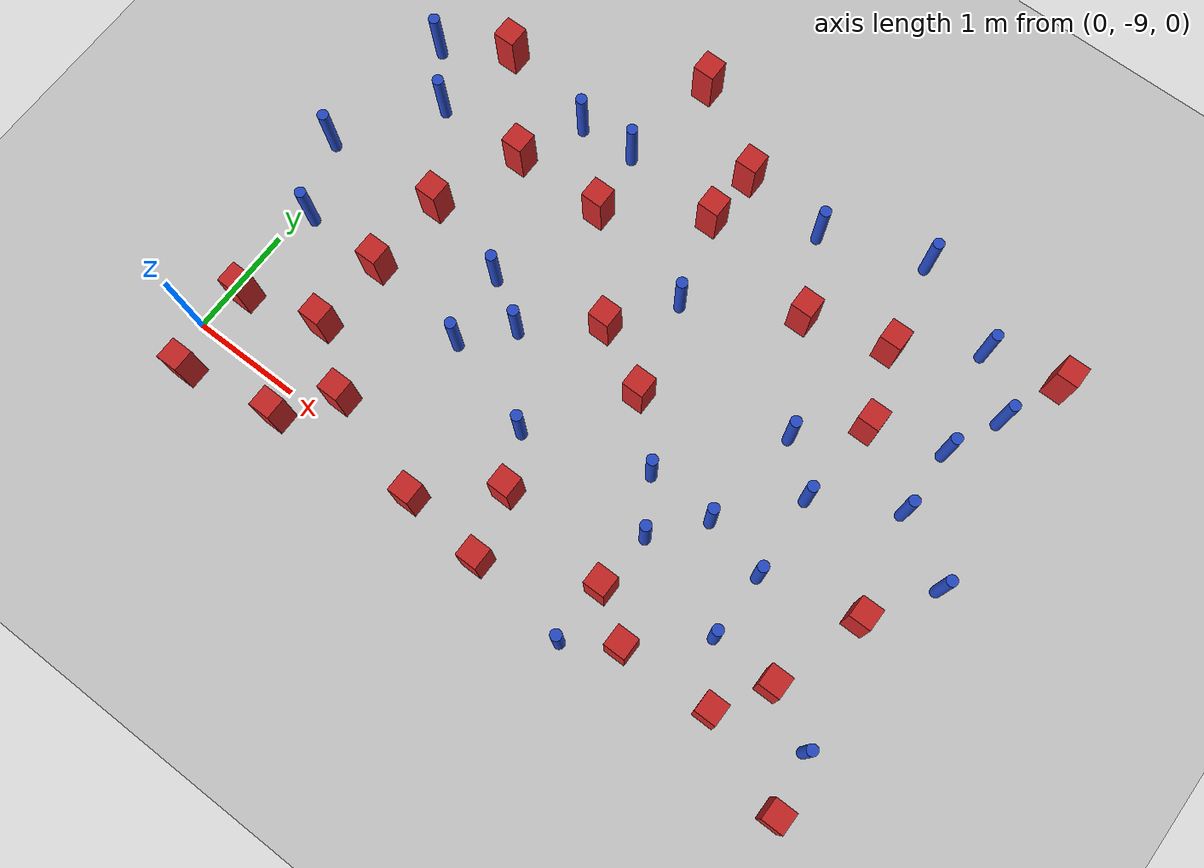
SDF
<sdf version="1.6">
 <world name="default">
  <model name="ground_plane">
   <static>1</static>
   <link name="link">
    <collision name="collision">
     <geometry><plane><normal>0 0 1</normal><size>100 100</size></plane></geometry>
     <surface><friction><ode><mu>100</mu><mu2>50</mu2></ode></friction></surface>
    </collision>
    <visual name="visual">
     <cast_shadows>0</cast_shadows>
     <geometry><plane><normal>0 0 1</normal><size>100 100</size></plane></geometry>
     <material>
      <ambient>1.0 1.0 1.0 1.0</ambient>
      <diffuse>0.8 0.8 0.8 1.0</diffuse>
      <specular>0.01 0.01 0.01 1.000000</specular>
     </material>
    </visual>
   </link>
  </model>
  <model name="pole_obstacle3">
   <static>true</static>
   <pose>0.141307437427 -7.68088082343 7.38925637345e-09 -8.471706928e-08 1.24976765036e-08 -1.74513093019e-07</pose>
   <link name="link">
    <pose>0 0 0.3 0 -0 0</pose>
    <inertial>
     <mass>1</mass>
     <inertia><ixx>0.145833</ixx><ixy>0</ixy><ixz>0</ixz><iyy>0.145833</iyy><iyz>0</iyz><izz>0.125</izz></inertia>
    </inertial>
    <collision name="collision">
     <geometry><cylinder><radius>0.05</radius><length>.6</length></cylinder></geometry>
    </collision>
    <visual name="visual">
     <geometry><cylinder><radius>0.05</radius><length>.6</length></cylinder></geometry>
     <material>
      <script><name>Gazebo/Blue</name><uri>file://media/materials/scripts/gazebo.material</uri></script>
     </material>
    </visual>
   </link>
  </model>
  <model name="square_post_obstacle4">
   <static>true</static>
   <pose>1.247294603 -6.15242603051 1.91545236811e-07 -7.35059704564e-06 1.12565212e-07 2.39332434364e-05</pose>
   <link name="link">
    <pose>0 0 0.25 0 -0 0</pose>
    <inertial>
     <mass>100</mass>
     <inertia>
      <ixx>0.166667</ixx>
      <ixy>0</ixy>
      <ixz>0</ixz>
      <iyy>0.166667</iyy>
      <iyz>0</iyz>
      <izz>0.166667</izz>
     </inertia>
    </inertial>
    <collision name="collision"><geometry><box><size>.2 .2 .5</size></box></geometry></collision>
    <visual name="visual">
     <geometry><box><size>.2 .2 .5</size></box></geometry>
     <material>
      <script><name>Gazebo/Red</name><uri>file://media/materials/scripts/gazebo.material</uri></script>
     </material>
    </visual>
   </link>
  </model>
  <model name="square_post_obstacle5">
   <static>true</static>
   <pose>0.161578494931 -8.57052492048 1.91545236811e-07 -7.35059704564e-06 1.12565212e-07 2.39332434364e-05</pose>
   <link name="link">
    <pose>0 0 0.25 0 -0 0</pose>
    <inertial>
     <mass>100</mass>
     <inertia>
      <ixx>0.166667</ixx>
      <ixy>0</ixy>
      <ixz>0</ixz>
      <iyy>0.166667</iyy>
      <iyz>0</iyz>
      <izz>0.166667</izz>
     </inertia>
    </inertial>
    <collision name="collision"><geometry><box><size>.2 .2 .5</size></box></geometry></collision>
    <visual name="visual">
     <geometry><box><size>.2 .2 .5</size></box></geometry>
     <material>
      <script><name>Gazebo/Red</name><uri>file://media/materials/scripts/gazebo.material</uri></script>
     </material>
    </visual>
   </link>
  </model>
  <model name="square_post_obstacle8">
   <static>true</static>
   <pose>5.90578186092 -7.71212455294 1.91545236811e-07 -7.35059704564e-06 1.12565212e-07 2.39332434364e-05</pose>
   <link name="link">
    <pose>0 0 0.25 0 -0 0</pose>
    <inertial>
     <mass>100</mass>
     <inertia>
      <ixx>0.166667</ixx>
      <ixy>0</ixy>
      <ixz>0</ixz>
      <iyy>0.166667</iyy>
      <iyz>0</iyz>
      <izz>0.166667</izz>
     </inertia>
    </inertial>
    <collision name="collision"><geometry><box><size>.2 .2 .5</size></box></geometry></collision>
    <visual name="visual">
     <geometry><box><size>.2 .2 .5</size></box></geometry>
     <material>
      <script><name>Gazebo/Red</name><uri>file://media/materials/scripts/gazebo.material</uri></script>
     </material>
    </visual>
   </link>
  </model>
  <model name="square_post_obstacle14">
   <static>true</static>
   <pose>1.41845635646 -8.77849370848 1.91545236811e-07 -7.35059704564e-06 1.12565212e-07 2.39332434364e-05</pose>
   <link name="link">
    <pose>0 0 0.25 0 -0 0</pose>
    <inertial>
     <mass>100</mass>
     <inertia>
      <ixx>0.166667</ixx>
      <ixy>0</ixy>
      <ixz>0</ixz>
      <iyy>0.166667</iyy>
      <iyz>0</iyz>
      <izz>0.166667</izz>
     </inertia>
    </inertial>
    <collision name="collision"><geometry><box><size>.2 .2 .5</size></box></geometry></collision>
    <visual name="visual">
     <geometry><box><size>.2 .2 .5</size></box></geometry>
     <material>
      <script><name>Gazebo/Red</name><uri>file://media/materials/scripts/gazebo.material</uri></script>
     </material>
    </visual>
   </link>
  </model>
  <model name="square_post_obstacle19">
   <static>true</static>
   <pose>4.82646554091 -5.68072084667 1.91545236811e-07 -7.35059704564e-06 1.12565212e-07 2.39332434364e-05</pose>
   <link name="link">
    <pose>0 0 0.25 0 -0 0</pose>
    <inertial>
     <mass>100</mass>
     <inertia>
      <ixx>0.166667</ixx>
      <ixy>0</ixy>
      <ixz>0</ixz>
      <iyy>0.166667</iyy>
      <iyz>0</iyz>
      <izz>0.166667</izz>
     </inertia>
    </inertial>
    <collision name="collision"><geometry><box><size>.2 .2 .5</size></box></geometry></collision>
    <visual name="visual">
     <geometry><box><size>.2 .2 .5</size></box></geometry>
     <material>
      <script><name>Gazebo/Red</name><uri>file://media/materials/scripts/gazebo.material</uri></script>
     </material>
    </visual>
   </link>
  </model>
  <model name="square_post_obstacle20">
   <static>true</static>
   <pose>1.0768508336 -9.2199925486 1.91545236811e-07 -7.35059704564e-06 1.12565212e-07 2.39332434364e-05</pose>
   <link name="link">
    <pose>0 0 0.25 0 -0 0</pose>
    <inertial>
     <mass>100</mass>
     <inertia>
      <ixx>0.166667</ixx>
      <ixy>0</ixy>
      <ixz>0</ixz>
      <iyy>0.166667</iyy>
      <iyz>0</iyz>
      <izz>0.166667</izz>
     </inertia>
    </inertial>
    <collision name="collision"><geometry><box><size>.2 .2 .5</size></box></geometry></collision>
    <visual name="visual">
     <geometry><box><size>.2 .2 .5</size></box></geometry>
     <material>
      <script><name>Gazebo/Red</name><uri>file://media/materials/scripts/gazebo.material</uri></script>
     </material>
    </visual>
   </link>
  </model>
  <model name="pole_obstacle24">
   <static>true</static>
   <pose>6.28574504298 -7.13417489419 7.38925637345e-09 -8.47170692796e-08 1.24976764786e-08 -1.74513093032e-07</pose>
   <link name="link">
    <pose>0 0 0.3 0 -0 0</pose>
    <inertial>
     <mass>1</mass>
     <inertia><ixx>0.145833</ixx><ixy>0</ixy><ixz>0</ixz><iyy>0.145833</iyy><iyz>0</iyz><izz>0.125</izz></inertia>
    </inertial>
    <collision name="collision">
     <geometry><cylinder><radius>0.05</radius><length>.6</length></cylinder></geometry>
    </collision>
    <visual name="visual">
     <geometry><cylinder><radius>0.05</radius><length>.6</length></cylinder></geometry>
     <material>
      <script><name>Gazebo/Blue</name><uri>file://media/materials/scripts/gazebo.material</uri></script>
     </material>
    </visual>
   </link>
  </model>
  <model name="square_post_obstacle32">
   <static>true</static>
   <pose>4.52101651909 -9.02843025565 1.91545236811e-07 -7.35059704564e-06 1.12565212e-07 2.39332434364e-05</pose>
   <link name="link">
    <pose>0 0 0.25 0 -0 0</pose>
    <inertial>
     <mass>100</mass>
     <inertia>
      <ixx>0.166667</ixx>
      <ixy>0</ixy>
      <ixz>0</ixz>
      <iyy>0.166667</iyy>
      <iyz>0</iyz>
      <izz>0.166667</izz>
     </inertia>
    </inertial>
    <collision name="collision"><geometry><box><size>.2 .2 .5</size></box></geometry></collision>
    <visual name="visual">
     <geometry><box><size>.2 .2 .5</size></box></geometry>
     <material>
      <script><name>Gazebo/Red</name><uri>file://media/materials/scripts/gazebo.material</uri></script>
     </material>
    </visual>
   </link>
  </model>
  <model name="pole_obstacle37">
   <static>true</static>
   <pose>5.05941591067 -7.91602911837 7.38925637345e-09 -8.47170692796e-08 1.24976764786e-08 -1.74513093032e-07</pose>
   <link name="link">
    <pose>0 0 0.3 0 -0 0</pose>
    <inertial>
     <mass>1</mass>
     <inertia><ixx>0.145833</ixx><ixy>0</ixy><ixz>0</ixz><iyy>0.145833</iyy><iyz>0</iyz><izz>0.125</izz></inertia>
    </inertial>
    <collision name="collision">
     <geometry><cylinder><radius>0.05</radius><length>.6</length></cylinder></geometry>
    </collision>
    <visual name="visual">
     <geometry><cylinder><radius>0.05</radius><length>.6</length></cylinder></geometry>
     <material>
      <script><name>Gazebo/Blue</name><uri>file://media/materials/scripts/gazebo.material</uri></script>
     </material>
    </visual>
   </link>
  </model>
  <model name="pole_obstacle38">
   <static>true</static>
   <pose>4.66620318073 -4.85279607327 7.38925637345e-09 -8.47170692796e-08 1.24976764786e-08 -1.74513093032e-07</pose>
   <link name="link">
    <pose>0 0 0.3 0 -0 0</pose>
    <inertial>
     <mass>1</mass>
     <inertia><ixx>0.145833</ixx><ixy>0</ixy><ixz>0</ixz><iyy>0.145833</iyy><iyz>0</iyz><izz>0.125</izz></inertia>
    </inertial>
    <collision name="collision">
     <geometry><cylinder><radius>0.05</radius><length>.6</length></cylinder></geometry>
    </collision>
    <visual name="visual">
     <geometry><cylinder><radius>0.05</radius><length>.6</length></cylinder></geometry>
     <material>
      <script><name>Gazebo/Blue</name><uri>file://media/materials/scripts/gazebo.material</uri></script>
     </material>
    </visual>
   </link>
  </model>
  <model name="square_post_obstacle38">
   <static>true</static>
   <pose>3.01587520829 -8.57592726186 1.91545236811e-07 -7.35059704564e-06 1.12565212e-07 2.39332434364e-05</pose>
   <link name="link">
    <pose>0 0 0.25 0 -0 0</pose>
    <inertial>
     <mass>100</mass>
     <inertia>
      <ixx>0.166667</ixx>
      <ixy>0</ixy>
      <ixz>0</ixz>
      <iyy>0.166667</iyy>
      <iyz>0</iyz>
      <izz>0.166667</izz>
     </inertia>
    </inertial>
    <collision name="collision"><geometry><box><size>.2 .2 .5</size></box></geometry></collision>
    <visual name="visual">
     <geometry><box><size>.2 .2 .5</size></box></geometry>
     <material>
      <script><name>Gazebo/Red</name><uri>file://media/materials/scripts/gazebo.material</uri></script>
     </material>
    </visual>
   </link>
  </model>
  <model name="pole_obstacle39">
   <static>true</static>
   <pose>5.48624549172 -5.23455754882 7.38925637345e-09 -8.47170692796e-08 1.24976764786e-08 -1.74513093032e-07</pose>
   <link name="link">
    <pose>0 0 0.3 0 -0 0</pose>
    <inertial>
     <mass>1</mass>
     <inertia><ixx>0.145833</ixx><ixy>0</ixy><ixz>0</ixz><iyy>0.145833</iyy><iyz>0</iyz><izz>0.125</izz></inertia>
    </inertial>
    <collision name="collision">
     <geometry><cylinder><radius>0.05</radius><length>.6</length></cylinder></geometry>
    </collision>
    <visual name="visual">
     <geometry><cylinder><radius>0.05</radius><length>.6</length></cylinder></geometry>
     <material>
      <script><name>Gazebo/Blue</name><uri>file://media/materials/scripts/gazebo.material</uri></script>
     </material>
    </visual>
   </link>
  </model>
  <model name="square_post_obstacle40">
   <static>true</static>
   <pose>2.79253574585 -6.95926911857 1.91545236811e-07 -7.35059704564e-06 1.12565212e-07 2.39332434364e-05</pose>
   <link name="link">
    <pose>0 0 0.25 0 -0 0</pose>
    <inertial>
     <mass>100</mass>
     <inertia>
      <ixx>0.166667</ixx>
      <ixy>0</ixy>
      <ixz>0</ixz>
      <iyy>0.166667</iyy>
      <iyz>0</iyz>
      <izz>0.166667</izz>
     </inertia>
    </inertial>
    <collision name="collision"><geometry><box><size>.2 .2 .5</size></box></geometry></collision>
    <visual name="visual">
     <geometry><box><size>.2 .2 .5</size></box></geometry>
     <material>
      <script><name>Gazebo/Red</name><uri>file://media/materials/scripts/gazebo.material</uri></script>
     </material>
    </visual>
   </link>
  </model>
  <model name="square_post_obstacle47">
   <static>true</static>
   <pose>0.874681205363 -8.3783853455 1.91545236811e-07 -7.35059704564e-06 1.12565212e-07 2.39332434364e-05</pose>
   <link name="link">
    <pose>0 0 0.25 0 -0 0</pose>
    <inertial>
     <mass>100</mass>
     <inertia>
      <ixx>0.166667</ixx>
      <ixy>0</ixy>
      <ixz>0</ixz>
      <iyy>0.166667</iyy>
      <iyz>0</iyz>
      <izz>0.166667</izz>
     </inertia>
    </inertial>
    <collision name="collision"><geometry><box><size>.2 .2 .5</size></box></geometry></collision>
    <visual name="visual">
     <geometry><box><size>.2 .2 .5</size></box></geometry>
     <material>
      <script><name>Gazebo/Red</name><uri>file://media/materials/scripts/gazebo.material</uri></script>
     </material>
    </visual>
   </link>
  </model>
  <model name="pole_obstacle46">
   <static>true</static>
   <pose>1.7686049959 -7.164342052 7.38925637345e-09 -8.47170692799e-08 1.24976765033e-08 -1.74513093018e-07</pose>
   <link name="link">
    <pose>0 0 0.3 0 -0 0</pose>
    <inertial>
     <mass>1</mass>
     <inertia><ixx>0.145833</ixx><ixy>0</ixy><ixz>0</ixz><iyy>0.145833</iyy><iyz>0</iyz><izz>0.125</izz></inertia>
    </inertial>
    <collision name="collision">
     <geometry><cylinder><radius>0.05</radius><length>.6</length></cylinder></geometry>
    </collision>
    <visual name="visual">
     <geometry><cylinder><radius>0.05</radius><length>.6</length></cylinder></geometry>
     <material>
      <script><name>Gazebo/Blue</name><uri>file://media/materials/scripts/gazebo.material</uri></script>
     </material>
    </visual>
   </link>
  </model>
  <model name="pole_obstacle48">
   <static>true</static>
   <pose>5.91869057345 -5.65414367045 7.38925637345e-09 -8.47170692796e-08 1.24976764786e-08 -1.74513093032e-07</pose>
   <link name="link">
    <pose>0 0 0.3 0 -0 0</pose>
    <inertial>
     <mass>1</mass>
     <inertia><ixx>0.145833</ixx><ixy>0</ixy><ixz>0</ixz><iyy>0.145833</iyy><iyz>0</iyz><izz>0.125</izz></inertia>
    </inertial>
    <collision name="collision">
     <geometry><cylinder><radius>0.05</radius><length>.6</length></cylinder></geometry>
    </collision>
    <visual name="visual">
     <geometry><cylinder><radius>0.05</radius><length>.6</length></cylinder></geometry>
     <material>
      <script><name>Gazebo/Blue</name><uri>file://media/materials/scripts/gazebo.material</uri></script>
     </material>
    </visual>
   </link>
  </model>
  <model name="square_post_obstacle52">
   <static>true</static>
   <pose>2.96372649649 -5.10758367308 1.91545236811e-07 -7.35059704564e-06 1.12565212e-07 2.39332434364e-05</pose>
   <link name="link">
    <pose>0 0 0.25 0 -0 0</pose>
    <inertial>
     <mass>100</mass>
     <inertia>
      <ixx>0.166667</ixx>
      <ixy>0</ixy>
      <ixz>0</ixz>
      <iyy>0.166667</iyy>
      <iyz>0</iyz>
      <izz>0.166667</izz>
     </inertia>
    </inertial>
    <collision name="collision"><geometry><box><size>.2 .2 .5</size></box></geometry></collision>
    <visual name="visual">
     <geometry><box><size>.2 .2 .5</size></box></geometry>
     <material>
      <script><name>Gazebo/Red</name><uri>file://media/materials/scripts/gazebo.material</uri></script>
     </material>
    </visual>
   </link>
  </model>
  <model name="square_post_obstacle63">
   <static>true</static>
   <pose>2.15338307017 -4.60433572408 1.91545236811e-07 -7.35059704564e-06 1.12565212e-07 2.39332434364e-05</pose>
   <link name="link">
    <pose>0 0 0.25 0 -0 0</pose>
    <inertial>
     <mass>100</mass>
     <inertia>
      <ixx>0.166667</ixx>
      <ixy>0</ixy>
      <ixz>0</ixz>
      <iyy>0.166667</iyy>
      <iyz>0</iyz>
      <izz>0.166667</izz>
     </inertia>
    </inertial>
    <collision name="collision"><geometry><box><size>.2 .2 .5</size></box></geometry></collision>
    <visual name="visual">
     <geometry><box><size>.2 .2 .5</size></box></geometry>
     <material>
      <script><name>Gazebo/Red</name><uri>file://media/materials/scripts/gazebo.material</uri></script>
     </material>
    </visual>
   </link>
  </model>
  <model name="square_post_obstacle75">
   <static>true</static>
   <pose>2.10214812445 -6.14550689388 1.91545236811e-07 -7.35059704564e-06 1.12565212e-07 2.39332434364e-05</pose>
   <link name="link">
    <pose>0 0 0.25 0 -0 0</pose>
    <inertial>
     <mass>100</mass>
     <inertia>
      <ixx>0.166667</ixx>
      <ixy>0</ixy>
      <ixz>0</ixz>
      <iyy>0.166667</iyy>
      <iyz>0</iyz>
      <izz>0.166667</izz>
     </inertia>
    </inertial>
    <collision name="collision"><geometry><box><size>.2 .2 .5</size></box></geometry></collision>
    <visual name="visual">
     <geometry><box><size>.2 .2 .5</size></box></geometry>
     <material>
      <script><name>Gazebo/Red</name><uri>file://media/materials/scripts/gazebo.material</uri></script>
     </material>
    </visual>
   </link>
  </model>
  <model name="square_post_obstacle76">
   <static>true</static>
   <pose>3.37809625496 -7.26938653703 1.91545236811e-07 -7.35059704564e-06 1.12565212e-07 2.39332434364e-05</pose>
   <link name="link">
    <pose>0 0 0.25 0 -0 0</pose>
    <inertial>
     <mass>100</mass>
     <inertia>
      <ixx>0.166667</ixx>
      <ixy>0</ixy>
      <ixz>0</ixz>
      <iyy>0.166667</iyy>
      <iyz>0</iyz>
      <izz>0.166667</izz>
     </inertia>
    </inertial>
    <collision name="collision"><geometry><box><size>.2 .2 .5</size></box></geometry></collision>
    <visual name="visual">
     <geometry><box><size>.2 .2 .5</size></box></geometry>
     <material>
      <script><name>Gazebo/Red</name><uri>file://media/materials/scripts/gazebo.material</uri></script>
     </material>
    </visual>
   </link>
  </model>
  <model name="pole_obstacle75">
   <static>true</static>
   <pose>-0.175077576671 -7.01942484182 7.38925637345e-09 -8.47170692799e-08 1.24976765068e-08 -1.74513093018e-07</pose>
   <link name="link">
    <pose>0 0 0.3 0 -0 0</pose>
    <inertial>
     <mass>1</mass>
     <inertia><ixx>0.145833</ixx><ixy>0</ixy><ixz>0</ixz><iyy>0.145833</iyy><iyz>0</iyz><izz>0.125</izz></inertia>
    </inertial>
    <collision name="collision">
     <geometry><cylinder><radius>0.05</radius><length>.6</length></cylinder></geometry>
    </collision>
    <visual name="visual">
     <geometry><cylinder><radius>0.05</radius><length>.6</length></cylinder></geometry>
     <material>
      <script><name>Gazebo/Blue</name><uri>file://media/materials/scripts/gazebo.material</uri></script>
     </material>
    </visual>
   </link>
  </model>
  <model name="pole_obstacle85">
   <static>true</static>
   <pose>0.398781622146 -6.17395219763 7.38925637345e-09 -8.471706928e-08 1.24976765079e-08 -1.74513093015e-07</pose>
   <link name="link">
    <pose>0 0 0.3 0 -0 0</pose>
    <inertial>
     <mass>1</mass>
     <inertia><ixx>0.145833</ixx><ixy>0</ixy><ixz>0</ixz><iyy>0.145833</iyy><iyz>0</iyz><izz>0.125</izz></inertia>
    </inertial>
    <collision name="collision">
     <geometry><cylinder><radius>0.05</radius><length>.6</length></cylinder></geometry>
    </collision>
    <visual name="visual">
     <geometry><cylinder><radius>0.05</radius><length>.6</length></cylinder></geometry>
     <material>
      <script><name>Gazebo/Blue</name><uri>file://media/materials/scripts/gazebo.material</uri></script>
     </material>
    </visual>
   </link>
  </model>
  <model name="square_post_obstacle83">
   <static>true</static>
   <pose>2.41957839297 -9.09022849704 1.91545236811e-07 -7.35059704564e-06 1.12565212e-07 2.39332434364e-05</pose>
   <link name="link">
    <pose>0 0 0.25 0 -0 0</pose>
    <inertial>
     <mass>100</mass>
     <inertia>
      <ixx>0.166667</ixx>
      <ixy>0</ixy>
      <ixz>0</ixz>
      <iyy>0.166667</iyy>
      <iyz>0</iyz>
      <izz>0.166667</izz>
     </inertia>
    </inertial>
    <collision name="collision"><geometry><box><size>.2 .2 .5</size></box></geometry></collision>
    <visual name="visual">
     <geometry><box><size>.2 .2 .5</size></box></geometry>
     <material>
      <script><name>Gazebo/Red</name><uri>file://media/materials/scripts/gazebo.material</uri></script>
     </material>
    </visual>
   </link>
  </model>
  <model name="pole_obstacle101">
   <static>true</static>
   <pose>3.17291739853 -6.40830455927 7.38925637345e-09 -8.47170692798e-08 1.24976765033e-08 -1.74513093019e-07</pose>
   <link name="link">
    <pose>0 0 0.3 0 -0 0</pose>
    <inertial>
     <mass>1</mass>
     <inertia><ixx>0.145833</ixx><ixy>0</ixy><ixz>0</ixz><iyy>0.145833</iyy><iyz>0</iyz><izz>0.125</izz></inertia>
    </inertial>
    <collision name="collision">
     <geometry><cylinder><radius>0.05</radius><length>.6</length></cylinder></geometry>
    </collision>
    <visual name="visual">
     <geometry><cylinder><radius>0.05</radius><length>.6</length></cylinder></geometry>
     <material>
      <script><name>Gazebo/Blue</name><uri>file://media/materials/scripts/gazebo.material</uri></script>
     </material>
    </visual>
   </link>
  </model>
  <model name="square_post_obstacle99">
   <static>true</static>
   <pose>0.211255953364 -9.36707420106 1.91545236811e-07 -7.35059704564e-06 1.12565212e-07 2.39332434364e-05</pose>
   <link name="link">
    <pose>0 0 0.25 0 -0 0</pose>
    <inertial>
     <mass>100</mass>
     <inertia>
      <ixx>0.166667</ixx>
      <ixy>0</ixy>
      <ixz>0</ixz>
      <iyy>0.166667</iyy>
      <iyz>0</iyz>
      <izz>0.166667</izz>
     </inertia>
    </inertial>
    <collision name="collision"><geometry><box><size>.2 .2 .5</size></box></geometry></collision>
    <visual name="visual">
     <geometry><box><size>.2 .2 .5</size></box></geometry>
     <material>
      <script><name>Gazebo/Red</name><uri>file://media/materials/scripts/gazebo.material</uri></script>
     </material>
    </visual>
   </link>
  </model>
  <model name="pole_obstacle113">
   <static>true</static>
   <pose>4.48523671766 -7.77732234313 7.38925637345e-09 -8.47170692796e-08 1.24976764786e-08 -1.74513093032e-07</pose>
   <link name="link">
    <pose>0 0 0.3 0 -0 0</pose>
    <inertial>
     <mass>1</mass>
     <inertia><ixx>0.145833</ixx><ixy>0</ixy><ixz>0</ixz><iyy>0.145833</iyy><iyz>0</iyz><izz>0.125</izz></inertia>
    </inertial>
    <collision name="collision">
     <geometry><cylinder><radius>0.05</radius><length>.6</length></cylinder></geometry>
    </collision>
    <visual name="visual">
     <geometry><cylinder><radius>0.05</radius><length>.6</length></cylinder></geometry>
     <material>
      <script><name>Gazebo/Blue</name><uri>file://media/materials/scripts/gazebo.material</uri></script>
     </material>
    </visual>
   </link>
  </model>
  <model name="square_post_obstacle108">
   <static>true</static>
   <pose>0.940062333671 -6.94157876831 1.91545236811e-07 -7.35059704564e-06 1.12565212e-07 2.39332434364e-05</pose>
   <link name="link">
    <pose>0 0 0.25 0 -0 0</pose>
    <inertial>
     <mass>100</mass>
     <inertia>
      <ixx>0.166667</ixx>
      <ixy>0</ixy>
      <ixz>0</ixz>
      <iyy>0.166667</iyy>
      <iyz>0</iyz>
      <izz>0.166667</izz>
     </inertia>
    </inertial>
    <collision name="collision"><geometry><box><size>.2 .2 .5</size></box></geometry></collision>
    <visual name="visual">
     <geometry><box><size>.2 .2 .5</size></box></geometry>
     <material>
      <script><name>Gazebo/Red</name><uri>file://media/materials/scripts/gazebo.material</uri></script>
     </material>
    </visual>
   </link>
  </model>
  <model name="square_post_obstacle111">
   <static>true</static>
   <pose>3.17364835283 -9.17054178301 1.91545236811e-07 -7.35059704564e-06 1.12565212e-07 2.39332434364e-05</pose>
   <link name="link">
    <pose>0 0 0.25 0 -0 0</pose>
    <inertial>
     <mass>100</mass>
     <inertia>
      <ixx>0.166667</ixx>
      <ixy>0</ixy>
      <ixz>0</ixz>
      <iyy>0.166667</iyy>
      <iyz>0</iyz>
      <izz>0.166667</izz>
     </inertia>
    </inertial>
    <collision name="collision"><geometry><box><size>.2 .2 .5</size></box></geometry></collision>
    <visual name="visual">
     <geometry><box><size>.2 .2 .5</size></box></geometry>
     <material>
      <script><name>Gazebo/Red</name><uri>file://media/materials/scripts/gazebo.material</uri></script>
     </material>
    </visual>
   </link>
  </model>
  <model name="square_post_obstacle121">
   <static>true</static>
   <pose>5.06488862234 -6.3556465604 1.91545236811e-07 -7.35059704564e-06 1.12565212e-07 2.39332434364e-05</pose>
   <link name="link">
    <pose>0 0 0.25 0 -0 0</pose>
    <inertial>
     <mass>100</mass>
     <inertia>
      <ixx>0.166667</ixx>
      <ixy>0</ixy>
      <ixz>0</ixz>
      <iyy>0.166667</iyy>
      <iyz>0</iyz>
      <izz>0.166667</izz>
     </inertia>
    </inertial>
    <collision name="collision"><geometry><box><size>.2 .2 .5</size></box></geometry></collision>
    <visual name="visual">
     <geometry><box><size>.2 .2 .5</size></box></geometry>
     <material>
      <script><name>Gazebo/Red</name><uri>file://media/materials/scripts/gazebo.material</uri></script>
     </material>
    </visual>
   </link>
  </model>
  <model name="square_post_obstacle122">
   <static>true</static>
   <pose>0.560977104921 -5.38965633295 1.91545236811e-07 -7.35059704564e-06 1.12565212e-07 2.39332434364e-05</pose>
   <link name="link">
    <pose>0 0 0.25 0 -0 0</pose>
    <inertial>
     <mass>100</mass>
     <inertia>
      <ixx>0.166667</ixx>
      <ixy>0</ixy>
      <ixz>0</ixz>
      <iyy>0.166667</iyy>
      <iyz>0</iyz>
      <izz>0.166667</izz>
     </inertia>
    </inertial>
    <collision name="collision"><geometry><box><size>.2 .2 .5</size></box></geometry></collision>
    <visual name="visual">
     <geometry><box><size>.2 .2 .5</size></box></geometry>
     <material>
      <script><name>Gazebo/Red</name><uri>file://media/materials/scripts/gazebo.material</uri></script>
     </material>
    </visual>
   </link>
  </model>
  <model name="square_post_obstacle125">
   <static>true</static>
   <pose>4.08440343266 -5.88838927059 1.91545236811e-07 -7.35059704564e-06 1.12565212e-07 2.39332434364e-05</pose>
   <link name="link">
    <pose>0 0 0.25 0 -0 0</pose>
    <inertial>
     <mass>100</mass>
     <inertia>
      <ixx>0.166667</ixx>
      <ixy>0</ixy>
      <ixz>0</ixz>
      <iyy>0.166667</iyy>
      <iyz>0</iyz>
      <izz>0.166667</izz>
     </inertia>
    </inertial>
    <collision name="collision"><geometry><box><size>.2 .2 .5</size></box></geometry></collision>
    <visual name="visual">
     <geometry><box><size>.2 .2 .5</size></box></geometry>
     <material>
      <script><name>Gazebo/Red</name><uri>file://media/materials/scripts/gazebo.material</uri></script>
     </material>
    </visual>
   </link>
  </model>
  <model name="pole_obstacle140">
   <static>true</static>
   <pose>1.4941129854 -5.5767857747 7.38925637345e-09 -8.47170692799e-08 1.24976765033e-08 -1.74513093018e-07</pose>
   <link name="link">
    <pose>0 0 0.3 0 -0 0</pose>
    <inertial>
     <mass>1</mass>
     <inertia><ixx>0.145833</ixx><ixy>0</ixy><ixz>0</ixz><iyy>0.145833</iyy><iyz>0</iyz><izz>0.125</izz></inertia>
    </inertial>
    <collision name="collision">
     <geometry><cylinder><radius>0.05</radius><length>.6</length></cylinder></geometry>
    </collision>
    <visual name="visual">
     <geometry><cylinder><radius>0.05</radius><length>.6</length></cylinder></geometry>
     <material>
      <script><name>Gazebo/Blue</name><uri>file://media/materials/scripts/gazebo.material</uri></script>
     </material>
    </visual>
   </link>
  </model>
  <model name="pole_obstacle141">
   <static>true</static>
   <pose>5.00628651835 -7.16376802225 7.38925637345e-09 -8.47170692796e-08 1.24976764786e-08 -1.74513093032e-07</pose>
   <link name="link">
    <pose>0 0 0.3 0 -0 0</pose>
    <inertial>
     <mass>1</mass>
     <inertia><ixx>0.145833</ixx><ixy>0</ixy><ixz>0</ixz><iyy>0.145833</iyy><iyz>0</iyz><izz>0.125</izz></inertia>
    </inertial>
    <collision name="collision">
     <geometry><cylinder><radius>0.05</radius><length>.6</length></cylinder></geometry>
    </collision>
    <visual name="visual">
     <geometry><cylinder><radius>0.05</radius><length>.6</length></cylinder></geometry>
     <material>
      <script><name>Gazebo/Blue</name><uri>file://media/materials/scripts/gazebo.material</uri></script>
     </material>
    </visual>
   </link>
  </model>
  <model name="square_post_obstacle126">
   <static>true</static>
   <pose>0.905455721114 -7.68796364854 1.91545236811e-07 -7.35059704564e-06 1.12565212e-07 2.39332434364e-05</pose>
   <link name="link">
    <pose>0 0 0.25 0 -0 0</pose>
    <inertial>
     <mass>100</mass>
     <inertia>
      <ixx>0.166667</ixx>
      <ixy>0</ixy>
      <ixz>0</ixz>
      <iyy>0.166667</iyy>
      <iyz>0</iyz>
      <izz>0.166667</izz>
     </inertia>
    </inertial>
    <collision name="collision"><geometry><box><size>.2 .2 .5</size></box></geometry></collision>
    <visual name="visual">
     <geometry><box><size>.2 .2 .5</size></box></geometry>
     <material>
      <script><name>Gazebo/Red</name><uri>file://media/materials/scripts/gazebo.material</uri></script>
     </material>
    </visual>
   </link>
  </model>
  <model name="pole_obstacle143">
   <static>true</static>
   <pose>6.1460553851 -8.81904203596 7.38925637345e-09 -8.471706928e-08 1.24976765081e-08 -1.74513093015e-07</pose>
   <link name="link">
    <pose>0 0 0.3 0 -0 0</pose>
    <inertial>
     <mass>1</mass>
     <inertia><ixx>0.145833</ixx><ixy>0</ixy><ixz>0</ixz><iyy>0.145833</iyy><iyz>0</iyz><izz>0.125</izz></inertia>
    </inertial>
    <collision name="collision">
     <geometry><cylinder><radius>0.05</radius><length>.6</length></cylinder></geometry>
    </collision>
    <visual name="visual">
     <geometry><cylinder><radius>0.05</radius><length>.6</length></cylinder></geometry>
     <material>
      <script><name>Gazebo/Blue</name><uri>file://media/materials/scripts/gazebo.material</uri></script>
     </material>
    </visual>
   </link>
  </model>
  <model name="square_post_obstacle141">
   <static>true</static>
   <pose>5.37119598864 -9.00990027287 1.91545236811e-07 -7.35059704564e-06 1.12565212e-07 2.39332434364e-05</pose>
   <link name="link">
    <pose>0 0 0.25 0 -0 0</pose>
    <inertial>
     <mass>100</mass>
     <inertia>
      <ixx>0.166667</ixx>
      <ixy>0</ixy>
      <ixz>0</ixz>
      <iyy>0.166667</iyy>
      <iyz>0</iyz>
      <izz>0.166667</izz>
     </inertia>
    </inertial>
    <collision name="collision"><geometry><box><size>.2 .2 .5</size></box></geometry></collision>
    <visual name="visual">
     <geometry><box><size>.2 .2 .5</size></box></geometry>
     <material>
      <script><name>Gazebo/Red</name><uri>file://media/materials/scripts/gazebo.material</uri></script>
     </material>
    </visual>
   </link>
  </model>
  <model name="pole_obstacle152">
   <static>true</static>
   <pose>4.09808947353 -9.29589958845 7.38925637345e-09 -8.471706928e-08 1.24976765081e-08 -1.74513093015e-07</pose>
   <link name="link">
    <pose>0 0 0.3 0 -0 0</pose>
    <inertial>
     <mass>1</mass>
     <inertia><ixx>0.145833</ixx><ixy>0</ixy><ixz>0</ixz><iyy>0.145833</iyy><iyz>0</iyz><izz>0.125</izz></inertia>
    </inertial>
    <collision name="collision">
     <geometry><cylinder><radius>0.05</radius><length>.6</length></cylinder></geometry>
    </collision>
    <visual name="visual">
     <geometry><cylinder><radius>0.05</radius><length>.6</length></cylinder></geometry>
     <material>
      <script><name>Gazebo/Blue</name><uri>file://media/materials/scripts/gazebo.material</uri></script>
     </material>
    </visual>
   </link>
  </model>
  <model name="pole_obstacle153">
   <static>true</static>
   <pose>1.87054598997 -7.82394654165 7.38925637345e-09 -8.47170692799e-08 1.24976765033e-08 -1.74513093018e-07</pose>
   <link name="link">
    <pose>0 0 0.3 0 -0 0</pose>
    <inertial>
     <mass>1</mass>
     <inertia><ixx>0.145833</ixx><ixy>0</ixy><ixz>0</ixz><iyy>0.145833</iyy><iyz>0</iyz><izz>0.125</izz></inertia>
    </inertial>
    <collision name="collision">
     <geometry><cylinder><radius>0.05</radius><length>.6</length></cylinder></geometry>
    </collision>
    <visual name="visual">
     <geometry><cylinder><radius>0.05</radius><length>.6</length></cylinder></geometry>
     <material>
      <script><name>Gazebo/Blue</name><uri>file://media/materials/scripts/gazebo.material</uri></script>
     </material>
    </visual>
   </link>
  </model>
  <model name="square_post_obstacle150">
   <static>true</static>
   <pose>4.10524818177 -8.74398541489 1.91545236811e-07 -7.35059704564e-06 1.12565212e-07 2.39332434364e-05</pose>
   <link name="link">
    <pose>0 0 0.25 0 -0 0</pose>
    <inertial>
     <mass>100</mass>
     <inertia>
      <ixx>0.166667</ixx>
      <ixy>0</ixy>
      <ixz>0</ixz>
      <iyy>0.166667</iyy>
      <iyz>0</iyz>
      <izz>0.166667</izz>
     </inertia>
    </inertial>
    <collision name="collision"><geometry><box><size>.2 .2 .5</size></box></geometry></collision>
    <visual name="visual">
     <geometry><box><size>.2 .2 .5</size></box></geometry>
     <material>
      <script><name>Gazebo/Red</name><uri>file://media/materials/scripts/gazebo.material</uri></script>
     </material>
    </visual>
   </link>
  </model>
  <model name="pole_obstacle159">
   <static>true</static>
   <pose>5.70721134407 -6.78129491311 7.38925637345e-09 -8.47170692796e-08 1.24976764786e-08 -1.74513093032e-07</pose>
   <link name="link">
    <pose>0 0 0.3 0 -0 0</pose>
    <inertial>
     <mass>1</mass>
     <inertia><ixx>0.145833</ixx><ixy>0</ixy><ixz>0</ixz><iyy>0.145833</iyy><iyz>0</iyz><izz>0.125</izz></inertia>
    </inertial>
    <collision name="collision">
     <geometry><cylinder><radius>0.05</radius><length>.6</length></cylinder></geometry>
    </collision>
    <visual name="visual">
     <geometry><cylinder><radius>0.05</radius><length>.6</length></cylinder></geometry>
     <material>
      <script><name>Gazebo/Blue</name><uri>file://media/materials/scripts/gazebo.material</uri></script>
     </material>
    </visual>
   </link>
  </model>
  <model name="square_post_obstacle157">
   <static>true</static>
   <pose>6.15237240143 -5.08408017497 1.91545236811e-07 -7.35059704564e-06 1.12565212e-07 2.39332434364e-05</pose>
   <link name="link">
    <pose>0 0 0.25 0 -0 0</pose>
    <inertial>
     <mass>100</mass>
     <inertia>
      <ixx>0.166667</ixx>
      <ixy>0</ixy>
      <ixz>0</ixz>
      <iyy>0.166667</iyy>
      <iyz>0</iyz>
      <izz>0.166667</izz>
     </inertia>
    </inertial>
    <collision name="collision"><geometry><box><size>.2 .2 .5</size></box></geometry></collision>
    <visual name="visual">
     <geometry><box><size>.2 .2 .5</size></box></geometry>
     <material>
      <script><name>Gazebo/Red</name><uri>file://media/materials/scripts/gazebo.material</uri></script>
     </material>
    </visual>
   </link>
  </model>
  <model name="pole_obstacle164">
   <static>true</static>
   <pose>2.78427755922 -8.11305190644 7.38925637345e-09 -8.47170692793e-08 1.24976764408e-08 -1.74513093041e-07</pose>
   <link name="link">
    <pose>0 0 0.3 0 -0 0</pose>
    <inertial>
     <mass>1</mass>
     <inertia><ixx>0.145833</ixx><ixy>0</ixy><ixz>0</ixz><iyy>0.145833</iyy><iyz>0</iyz><izz>0.125</izz></inertia>
    </inertial>
    <collision name="collision">
     <geometry><cylinder><radius>0.05</radius><length>.6</length></cylinder></geometry>
    </collision>
    <visual name="visual">
     <geometry><cylinder><radius>0.05</radius><length>.6</length></cylinder></geometry>
     <material>
      <script><name>Gazebo/Blue</name><uri>file://media/materials/scripts/gazebo.material</uri></script>
     </material>
    </visual>
   </link>
  </model>
  <model name="pole_obstacle177">
   <static>true</static>
   <pose>-0.0025706291422 -5.73239070693 7.38925637345e-09 -8.471706928e-08 1.24976765086e-08 -1.74513093017e-07</pose>
   <link name="link">
    <pose>0 0 0.3 0 -0 0</pose>
    <inertial>
     <mass>1</mass>
     <inertia><ixx>0.145833</ixx><ixy>0</ixy><ixz>0</ixz><iyy>0.145833</iyy><iyz>0</iyz><izz>0.125</izz></inertia>
    </inertial>
    <collision name="collision">
     <geometry><cylinder><radius>0.05</radius><length>.6</length></cylinder></geometry>
    </collision>
    <visual name="visual">
     <geometry><cylinder><radius>0.05</radius><length>.6</length></cylinder></geometry>
     <material>
      <script><name>Gazebo/Blue</name><uri>file://media/materials/scripts/gazebo.material</uri></script>
     </material>
    </visual>
   </link>
  </model>
  <model name="pole_obstacle186">
   <static>true</static>
   <pose>3.86723107363 -7.7528822986 7.38925637345e-09 -8.47170692798e-08 1.24976765033e-08 -1.74513093019e-07</pose>
   <link name="link">
    <pose>0 0 0.3 0 -0 0</pose>
    <inertial>
     <mass>1</mass>
     <inertia><ixx>0.145833</ixx><ixy>0</ixy><ixz>0</ixz><iyy>0.145833</iyy><iyz>0</iyz><izz>0.125</izz></inertia>
    </inertial>
    <collision name="collision">
     <geometry><cylinder><radius>0.05</radius><length>.6</length></cylinder></geometry>
    </collision>
    <visual name="visual">
     <geometry><cylinder><radius>0.05</radius><length>.6</length></cylinder></geometry>
     <material>
      <script><name>Gazebo/Blue</name><uri>file://media/materials/scripts/gazebo.material</uri></script>
     </material>
    </visual>
   </link>
  </model>
  <model name="square_post_obstacle176">
   <static>true</static>
   <pose>5.64333157966 -8.5544242851 1.91545236811e-07 -7.35059704564e-06 1.12565212e-07 2.39332434364e-05</pose>
   <link name="link">
    <pose>0 0 0.25 0 -0 0</pose>
    <inertial>
     <mass>100</mass>
     <inertia>
      <ixx>0.166667</ixx>
      <ixy>0</ixy>
      <ixz>0</ixz>
      <iyy>0.166667</iyy>
      <iyz>0</iyz>
      <izz>0.166667</izz>
     </inertia>
    </inertial>
    <collision name="collision"><geometry><box><size>.2 .2 .5</size></box></geometry></collision>
    <visual name="visual">
     <geometry><box><size>.2 .2 .5</size></box></geometry>
     <material>
      <script><name>Gazebo/Red</name><uri>file://media/materials/scripts/gazebo.material</uri></script>
     </material>
    </visual>
   </link>
  </model>
  <model name="square_post_obstacle177">
   <static>true</static>
   <pose>6.23191330108 -9.3463871881 1.91545236811e-07 -7.35059704564e-06 1.12565212e-07 2.39332434364e-05</pose>
   <link name="link">
    <pose>0 0 0.25 0 -0 0</pose>
    <inertial>
     <mass>100</mass>
     <inertia>
      <ixx>0.166667</ixx>
      <ixy>0</ixy>
      <ixz>0</ixz>
      <iyy>0.166667</iyy>
      <iyz>0</iyz>
      <izz>0.166667</izz>
     </inertia>
    </inertial>
    <collision name="collision"><geometry><box><size>.2 .2 .5</size></box></geometry></collision>
    <visual name="visual">
     <geometry><box><size>.2 .2 .5</size></box></geometry>
     <material>
      <script><name>Gazebo/Red</name><uri>file://media/materials/scripts/gazebo.material</uri></script>
     </material>
    </visual>
   </link>
  </model>
  <model name="square_post_obstacle181">
   <static>true</static>
   <pose>2.93722635199 -5.61983908377 1.91545236811e-07 -7.35059704564e-06 1.12565212e-07 2.39332434364e-05</pose>
   <link name="link">
    <pose>0 0 0.25 0 -0 0</pose>
    <inertial>
     <mass>100</mass>
     <inertia>
      <ixx>0.166667</ixx>
      <ixy>0</ixy>
      <ixz>0</ixz>
      <iyy>0.166667</iyy>
      <iyz>0</iyz>
      <izz>0.166667</izz>
     </inertia>
    </inertial>
    <collision name="collision"><geometry><box><size>.2 .2 .5</size></box></geometry></collision>
    <visual name="visual">
     <geometry><box><size>.2 .2 .5</size></box></geometry>
     <material>
      <script><name>Gazebo/Red</name><uri>file://media/materials/scripts/gazebo.material</uri></script>
     </material>
    </visual>
   </link>
  </model>
  <model name="pole_obstacle198">
   <static>true</static>
   <pose>5.69756616291 -6.1596850809 7.38925637345e-09 -8.47170692796e-08 1.24976764786e-08 -1.74513093032e-07</pose>
   <link name="link">
    <pose>0 0 0.3 0 -0 0</pose>
    <inertial>
     <mass>1</mass>
     <inertia><ixx>0.145833</ixx><ixy>0</ixy><ixz>0</ixz><iyy>0.145833</iyy><iyz>0</iyz><izz>0.125</izz></inertia>
    </inertial>
    <collision name="collision">
     <geometry><cylinder><radius>0.05</radius><length>.6</length></cylinder></geometry>
    </collision>
    <visual name="visual">
     <geometry><cylinder><radius>0.05</radius><length>.6</length></cylinder></geometry>
     <material>
      <script><name>Gazebo/Blue</name><uri>file://media/materials/scripts/gazebo.material</uri></script>
     </material>
    </visual>
   </link>
  </model>
  <model name="pole_obstacle199">
   <static>true</static>
   <pose>4.14174488082 -8.20616234236 7.38925637345e-09 -8.471706928e-08 1.24976765081e-08 -1.74513093015e-07</pose>
   <link name="link">
    <pose>0 0 0.3 0 -0 0</pose>
    <inertial>
     <mass>1</mass>
     <inertia><ixx>0.145833</ixx><ixy>0</ixy><ixz>0</ixz><iyy>0.145833</iyy><iyz>0</iyz><izz>0.125</izz></inertia>
    </inertial>
    <collision name="collision">
     <geometry><cylinder><radius>0.05</radius><length>.6</length></cylinder></geometry>
    </collision>
    <visual name="visual">
     <geometry><cylinder><radius>0.05</radius><length>.6</length></cylinder></geometry>
     <material>
      <script><name>Gazebo/Blue</name><uri>file://media/materials/scripts/gazebo.material</uri></script>
     </material>
    </visual>
   </link>
  </model>
  <model name="pole_obstacle200">
   <static>true</static>
   <pose>2.01210464607 -5.54568553842 7.38925637345e-09 -8.47170692799e-08 1.24976765014e-08 -1.7451309302e-07</pose>
   <link name="link">
    <pose>0 0 0.3 0 -0 0</pose>
    <inertial>
     <mass>1</mass>
     <inertia><ixx>0.145833</ixx><ixy>0</ixy><ixz>0</ixz><iyy>0.145833</iyy><iyz>0</iyz><izz>0.125</izz></inertia>
    </inertial>
    <collision name="collision">
     <geometry><cylinder><radius>0.05</radius><length>.6</length></cylinder></geometry>
    </collision>
    <visual name="visual">
     <geometry><cylinder><radius>0.05</radius><length>.6</length></cylinder></geometry>
     <material>
      <script><name>Gazebo/Blue</name><uri>file://media/materials/scripts/gazebo.material</uri></script>
     </material>
    </visual>
   </link>
  </model>
  <model name="pole_obstacle205">
   <static>true</static>
   <pose>3.75430474108 -5.17872306962 7.38925637345e-09 -8.47170692798e-08 1.24976765033e-08 -1.74513093019e-07</pose>
   <link name="link">
    <pose>0 0 0.3 0 -0 0</pose>
    <inertial>
     <mass>1</mass>
     <inertia><ixx>0.145833</ixx><ixy>0</ixy><ixz>0</ixz><iyy>0.145833</iyy><iyz>0</iyz><izz>0.125</izz></inertia>
    </inertial>
    <collision name="collision">
     <geometry><cylinder><radius>0.05</radius><length>.6</length></cylinder></geometry>
    </collision>
    <visual name="visual">
     <geometry><cylinder><radius>0.05</radius><length>.6</length></cylinder></geometry>
     <material>
      <script><name>Gazebo/Blue</name><uri>file://media/materials/scripts/gazebo.material</uri></script>
     </material>
    </visual>
   </link>
  </model>
  <model name="pole_obstacle208">
   <static>true</static>
   <pose>2.21115592613 -7.43144814786 7.38925637345e-09 -8.47170692798e-08 1.24976765033e-08 -1.74513093019e-07</pose>
   <link name="link">
    <pose>0 0 0.3 0 -0 0</pose>
    <inertial>
     <mass>1</mass>
     <inertia><ixx>0.145833</ixx><ixy>0</ixy><ixz>0</ixz><iyy>0.145833</iyy><iyz>0</iyz><izz>0.125</izz></inertia>
    </inertial>
    <collision name="collision">
     <geometry><cylinder><radius>0.05</radius><length>.6</length></cylinder></geometry>
    </collision>
    <visual name="visual">
     <geometry><cylinder><radius>0.05</radius><length>.6</length></cylinder></geometry>
     <material>
      <script><name>Gazebo/Blue</name><uri>file://media/materials/scripts/gazebo.material</uri></script>
     </material>
    </visual>
   </link>
  </model>
  <model name="pole_obstacle213">
   <static>true</static>
   <pose>4.59687227942 -6.81384695486 7.38925637345e-09 -8.47170692796e-08 1.24976764786e-08 -1.74513093032e-07</pose>
   <link name="link">
    <pose>0 0 0.3 0 -0 0</pose>
    <inertial>
     <mass>1</mass>
     <inertia><ixx>0.145833</ixx><ixy>0</ixy><ixz>0</ixz><iyy>0.145833</iyy><iyz>0</iyz><izz>0.125</izz></inertia>
    </inertial>
    <collision name="collision">
     <geometry><cylinder><radius>0.05</radius><length>.6</length></cylinder></geometry>
    </collision>
    <visual name="visual">
     <geometry><cylinder><radius>0.05</radius><length>.6</length></cylinder></geometry>
     <material>
      <script><name>Gazebo/Blue</name><uri>file://media/materials/scripts/gazebo.material</uri></script>
     </material>
    </visual>
   </link>
  </model>
  <model name="pole_obstacle216">
   <static>true</static>
   <pose>5.06441514982 -8.52290130585 7.38925637345e-09 -8.471706928e-08 1.24976765081e-08 -1.74513093015e-07</pose>
   <link name="link">
    <pose>0 0 0.3 0 -0 0</pose>
    <inertial>
     <mass>1</mass>
     <inertia><ixx>0.145833</ixx><ixy>0</ixy><ixz>0</ixz><iyy>0.145833</iyy><iyz>0</iyz><izz>0.125</izz></inertia>
    </inertial>
    <collision name="collision">
     <geometry><cylinder><radius>0.05</radius><length>.6</length></cylinder></geometry>
    </collision>
    <visual name="visual">
     <geometry><cylinder><radius>0.05</radius><length>.6</length></cylinder></geometry>
     <material>
      <script><name>Gazebo/Blue</name><uri>file://media/materials/scripts/gazebo.material</uri></script>
     </material>
    </visual>
   </link>
  </model>
 </world>
</sdf>
